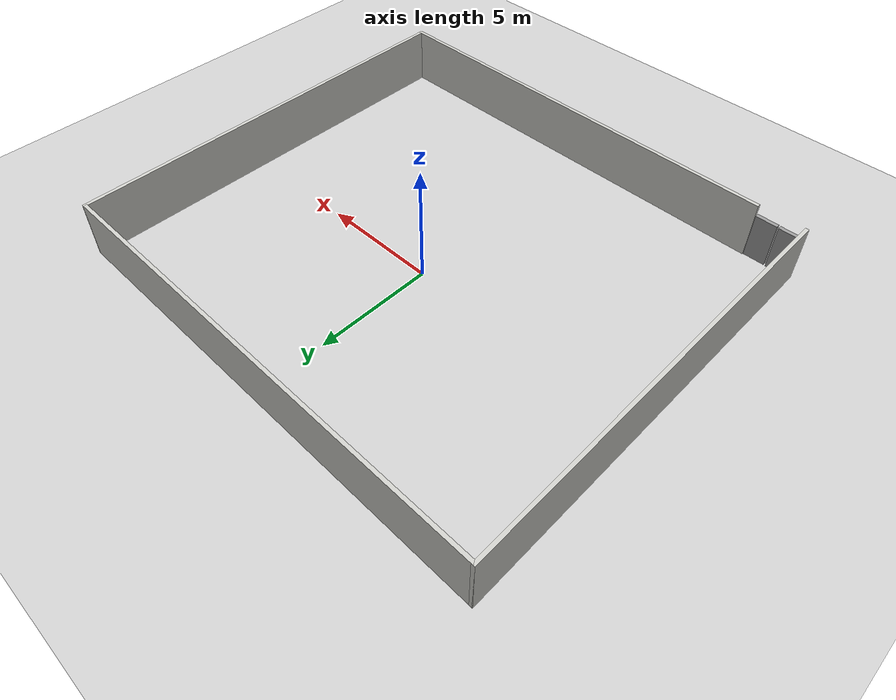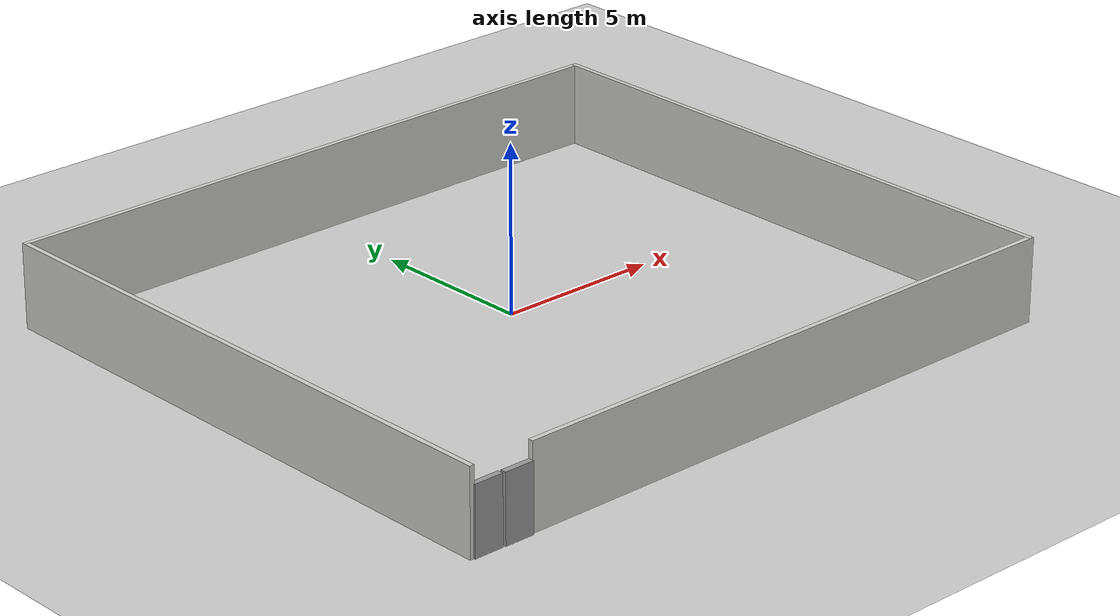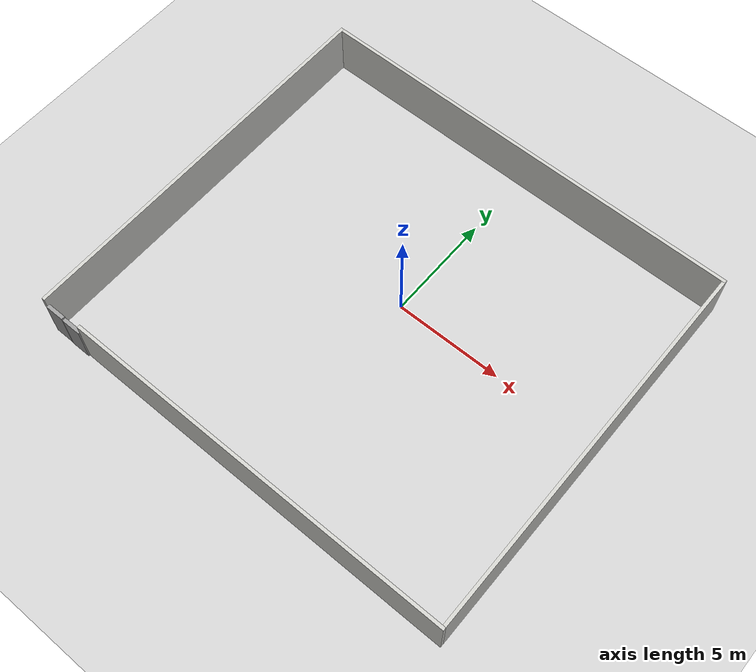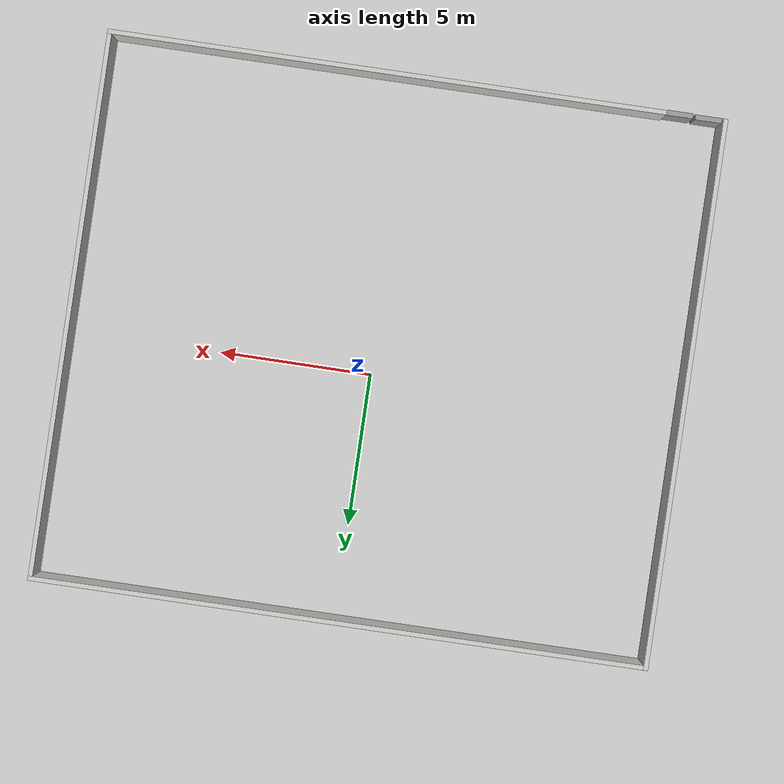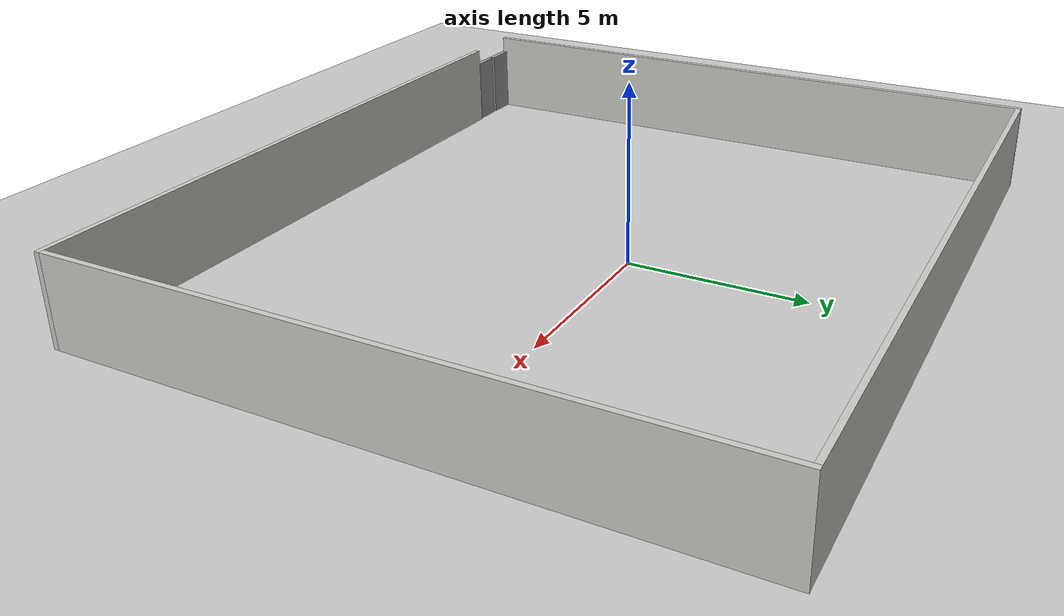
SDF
<sdf version="1.7">
 <world name="__default__">
  <model name="Building">
   <pose>-0.13002 -0.84943 0 0 -0 0</pose>
   <link name="Door_0">
    <collision name="Door_0_Collision">
     <geometry><box><size>0.9 0.17 2</size></box></geometry>
     <pose>0 0 1 0 -0 0</pose>
    </collision>
    <visual name="Door_0_Visual">
     <pose>0 0 1 0 -0 0</pose>
     <geometry><box><size>0.9 0.17 2</size></box></geometry>
     <material>
      <script><uri>file://media/materials/scripts/gazebo.material</uri><name>Gazebo/Grey</name></script>
     </material>
    </visual>
    <pose>-9.55514 -8.95706 0 0 -0 0</pose>
   </link>
   <link name="Door_1">
    <collision name="Door_1_Collision">
     <geometry><box><size>0.9 0.17 2</size></box></geometry>
     <pose>0 0 1 0 -0 0</pose>
    </collision>
    <visual name="Door_1_Visual">
     <pose>0 0 1 0 -0 0</pose>
     <geometry><box><size>0.9 0.17 2</size></box></geometry>
     <material>
      <script><uri>file://media/materials/scripts/gazebo.material</uri><name>Gazebo/Grey</name></script>
     </material>
    </visual>
    <pose>-8.58516 -8.97356 0 0 -0 0</pose>
   </link>
   <link name="Wall_11">
    <collision name="Wall_11_Collision">
     <geometry><box><size>18.25 0.15 2.5</size></box></geometry>
     <pose>0 0 1.25 0 -0 0</pose>
    </collision>
    <visual name="Wall_11_Visual">
     <pose>0 0 1.25 0 -0 0</pose>
     <geometry><box><size>18.25 0.15 2.5</size></box></geometry>
     <material>
      <script><uri>file://media/materials/scripts/gazebo.material</uri><name>Gazebo/CeilingTiled</name></script>
      <ambient>0.360784 0.207843 0.4 1</ambient>
     </material>
     <meta><layer>0</layer></meta>
    </visual>
    <pose>1.00008 -8.92521 0 0 -0 3.14159</pose>
   </link>
   <link name="Wall_15">
    <collision name="Wall_15_Collision">
     <geometry><box><size>18 0.15 2.5</size></box></geometry>
     <pose>0 0 1.25 0 -0 0</pose>
    </collision>
    <visual name="Wall_15_Visual">
     <pose>0 0 1.25 0 -0 0</pose>
     <geometry><box><size>18 0.15 2.5</size></box></geometry>
     <material>
      <script><uri>file://media/materials/scripts/gazebo.material</uri><name>Gazebo/CeilingTiled</name></script>
      <ambient>0.360784 0.207843 0.4 1</ambient>
     </material>
     <meta><layer>0</layer></meta>
    </visual>
    <pose>-10.0501 0.000212 0 0 -0 -1.5708</pose>
   </link>
   <link name="Wall_2">
    <collision name="Wall_2_Collision">
     <geometry><box><size>20.25 0.15 2.5</size></box></geometry>
     <pose>0 0 1.25 0 -0 0</pose>
    </collision>
    <visual name="Wall_2_Visual">
     <pose>0 0 1.25 0 -0 0</pose>
     <geometry><box><size>20.25 0.15 2.5</size></box></geometry>
     <material>
      <script><uri>file://media/materials/scripts/gazebo.material</uri><name>Gazebo/CeilingTiled</name></script>
      <ambient>0.360784 0.207843 0.4 1</ambient>
     </material>
     <meta><layer>0</layer></meta>
    </visual>
    <pose>0 8.925 0 0 -0 -2.1e-05</pose>
   </link>
   <link name="Wall_3">
    <collision name="Wall_3_Collision">
     <geometry><box><size>18 0.15 2.5</size></box></geometry>
     <pose>0 0 1.25 0 -0 0</pose>
    </collision>
    <visual name="Wall_3_Visual">
     <pose>0 0 1.25 0 -0 0</pose>
     <geometry><box><size>18 0.15 2.5</size></box></geometry>
     <material>
      <script><uri>file://media/materials/scripts/gazebo.material</uri><name>Gazebo/CeilingTiled</name></script>
      <ambient>0.360784 0.207843 0.4 1</ambient>
     </material>
     <meta><layer>0</layer></meta>
    </visual>
    <pose>10.0501 -0.000213 0 0 -0 -1.5708</pose>
   </link>
   <static>1</static>
  </model>
  <model name="ground_plane">
   <static>1</static>
   <link name="link">
    <collision name="collision">
     <geometry><plane><normal>0 0 1</normal><size>100 100</size></plane></geometry>
     <surface>
      <contact><collide_bitmask>65535</collide_bitmask></contact>
      <friction><ode><mu>100</mu><mu2>50</mu2></ode></friction>
     </surface>
    </collision>
    <visual name="visual">
     <cast_shadows>0</cast_shadows>
     <geometry><plane><normal>0 0 1</normal><size>100 100</size></plane></geometry>
     <material>
      <script><uri>file://media/materials/scripts/gazebo.material</uri><name>Gazebo/Grey</name></script>
     </material>
    </visual>
   </link>
   <pose>-59.0264 48.4098 0 0 -0 0</pose>
  </model>
 </world>
</sdf>
